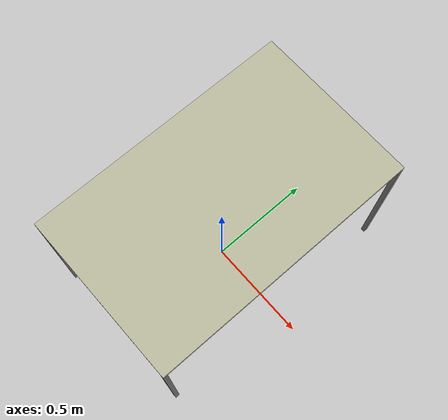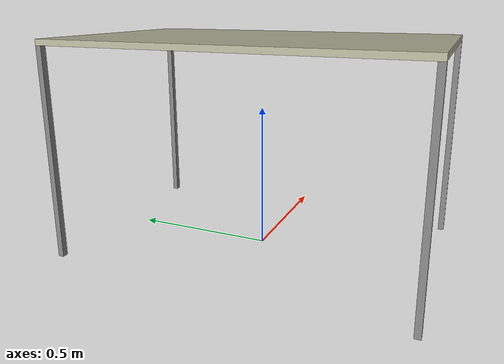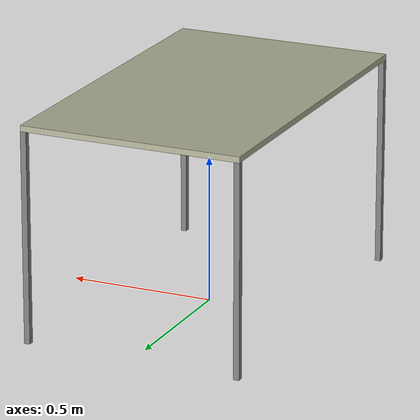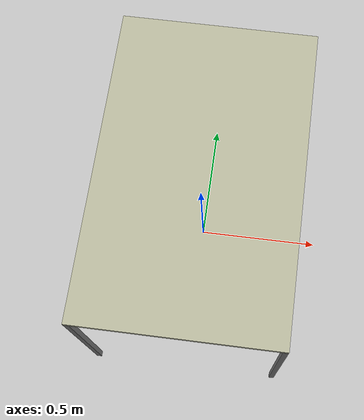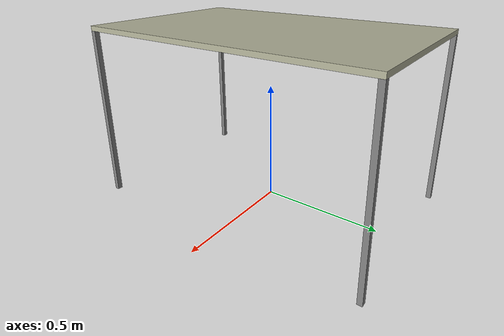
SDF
<?xml version='1.0'?>
<sdf version='1.7'>
  <model name='wooden_table'>
	<link name = "base_link">
		<inertial>
			<mass>24</mass>
			<inertia>
				<ixx>0.003</ixx>
				<ixy>0</ixy>
				<ixz>0</ixz>
				<iyy>0.008</iyy>
				<iyz>0</iyz>
				<izz>0.005</izz>
			</inertia>
		</inertial>
		<pose>0 0 0 0 -0 0</pose>
		<visual name="visual">
			<pose>0 0 0.73 0 0 0</pose>
			<geometry>
				<box>
					<size>0.76 1.215 0.02</size>
				</box>
			</geometry>
			<material>
				<diffuse>0.7 0.7 0.6 1</diffuse>
			</material>
		</visual>
		<collision name="collision">
			<pose>0 0 0.73 0 0 0</pose>
			<geometry>
				<box>
					<size>0.76 1.215 0.02</size>
				</box>
			</geometry>
		</collision>
	</link>
	<link name = "front_left_leg">
		<inertial>
			<mass>14</mass>
			<inertia>
				<ixx>0.62</ixx>
				<ixy>0</ixy>
				<ixz>0</ixz>
				<iyy>0.0037</iyy>
				<iyz>0</iyz>
				<izz>0.62</izz>
			</inertia>
		</inertial>
		<pose>0 0 0 0 -0 0</pose>
		<visual name="visual">
			<pose>0.37 0.5975 0.36 0 0 0</pose>
			<geometry>
				<box>
					<size>0.02 0.02 0.72</size>
				</box>
			</geometry>
			<material>
				<diffuse>0.5 0.5 0.5 1</diffuse>
			</material>
		</visual>
		<collision name="collision">
			<pose>0.37 0.5975 0.36 0 0 0</pose>
			<geometry>
				<box>
					<size>0.02 0.02 0.72</size>
				</box>
			</geometry>
		</collision>
	</link>
	<link name = "front_right_leg">
		<inertial>
			<mass>14</mass>
			<inertia>
				<ixx>0.62</ixx>
				<ixy>0</ixy>
				<ixz>0</ixz>
				<iyy>0.0037</iyy>
				<iyz>0</iyz>
				<izz>0.62</izz>
			</inertia>
		</inertial>
		<pose>0 0 0 0 -0 0</pose>
		<visual name="visual">
			<pose>-0.37 0.5975 0.36 0 0 0</pose>
			<geometry>
				<box>
					<size>0.02 0.02 0.72</size>
				</box>
			</geometry>
			<material>
				<diffuse>0.5 0.5 0.5 1</diffuse>
			</material>
		</visual>
		<collision name="collision">
			<pose>-0.37 0.5975 0.36 0 0 0</pose>
			<geometry>
				<box>
					<size>0.02 0.02 0.72</size>
				</box>
			</geometry>
		</collision>
	</link>
	<link name = "back_right_leg">
		<inertial>
			<mass>14</mass>
			<inertia>
				<ixx>0.62</ixx>
				<ixy>0</ixy>
				<ixz>0</ixz>
				<iyy>0.0037</iyy>
				<iyz>0</iyz>
				<izz>0.62</izz>
			</inertia>
		</inertial>
		<pose>0 0 0 0 -0 0</pose>
		<visual name="visual">
			<pose>-0.37 -0.5975 0.36 0 0 0</pose>
			<geometry>
				<box>
					<size>0.02 0.02 0.72</size>
				</box>
			</geometry>
			<material>
				<diffuse>0.5 0.5 0.5 1</diffuse>
			</material>
		</visual>
		<collision name="collision">
			<pose>-0.37 -0.5975 0.36 0 0 0</pose>
			<geometry>
				<box>
					<size>0.02 0.02 0.72</size>
				</box>
			</geometry>
		</collision>
	</link>
	<link name = "back_left_leg">
		<inertial>
			<mass>14</mass>
			<inertia>
				<ixx>0.62</ixx>
				<ixy>0</ixy>
				<ixz>0</ixz>
				<iyy>0.0037</iyy>
				<iyz>0</iyz>
				<izz>0.62</izz>
			</inertia>
		</inertial>
		<pose>0 0 0 0 -0 0</pose>
		<visual name="visual">
			<pose>0.37 -0.5975 0.36 0 0 0</pose>
			<geometry>
				<box>
					<size>0.02 0.02 0.72</size>
				</box>
			</geometry>
			<material>
				<diffuse>0.5 0.5 0.5 1</diffuse>
			</material>
		</visual>
		<collision name="collision">
			<pose>0.37 -0.5975 0.36 0 0 0</pose>
			<geometry>
				<box>
					<size>0.02 0.02 0.72</size>
				</box>
			</geometry>
		</collision>
	</link>
    <joint name='base_front_left' type='fixed'>
		<parent>base_link</parent>
		<child>front_left_leg</child>
		<pose>0 0 0 0 -0 0</pose>
    </joint>
    <joint name='base_front_right' type='fixed'>
		<parent>base_link</parent>
		<child>front_right_leg</child>
		<pose>0 0 0 0 -0 0</pose>
    </joint>
    <joint name='base_back_right' type='fixed'>
		<parent>base_link</parent>
		<child>back_right_leg</child>
		<pose>0 0 0 0 -0 0</pose>
    </joint>
    <joint name='base_back_left' type='fixed'>
		<parent>base_link</parent>
		<child>back_left_leg</child>
		<pose>0 0 0 0 -0 0</pose>
    </joint>
  </model>
</sdf>
